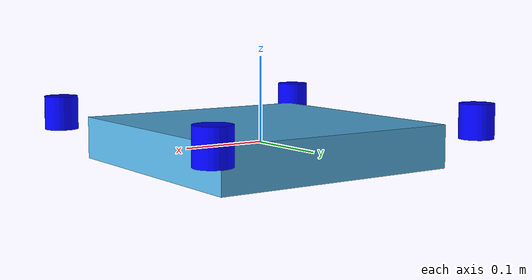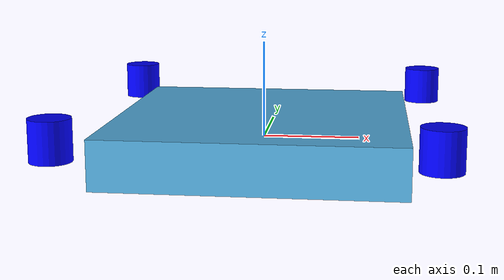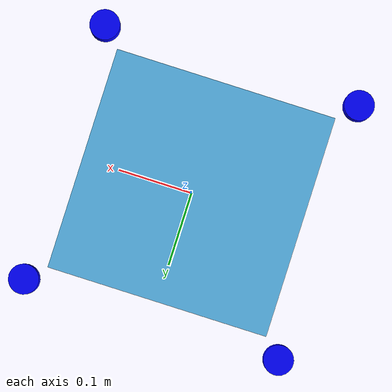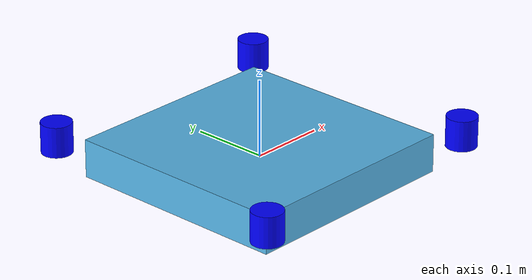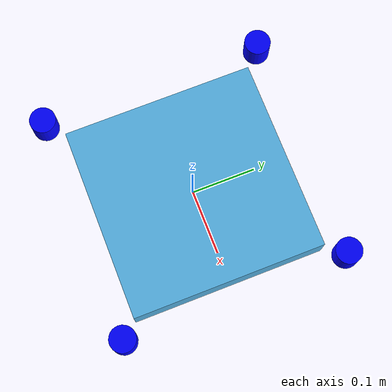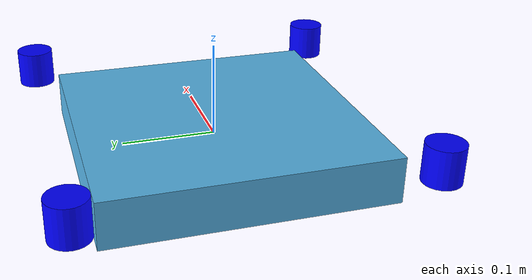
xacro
<?xml version="1.0"?>
<robot xmlns:xacro="http://www.ros.org/wiki/xacro" name="drone">

  <link name="base_link"/>

  <joint name="base_to_body" type="fixed">
    <parent link="base_link"/>
    <child link="body_link"/>
    <origin xyz="0 0 0" rpy="0 0 0"/>
  </joint>

  <link name="body_link">
    <visual>
      <geometry>
        <box size="0.3 0.3 0.05"/>
      </geometry>
    </visual>
  </link>

  <joint name="base_to_imu" type="fixed">
    <parent link="base_link"/>
    <child link="imu_link"/>
    <origin xyz="0 0 0" rpy="0 0 0"/>
  </joint>
  <link name="imu_link"/>

  <joint name="base_to_lidar" type="fixed">
    <parent link="base_link"/>
    <child link="lidar_link"/>
    <origin xyz="0.12 0.0 0.26" rpy="0 0 0"/>
  </joint>
  <link name="lidar_link"/>

  <material name="blue">
    <color rgba="0 0 1 1"/>
  </material>

  <joint name="motor_0_joint" type="fixed">
    <parent link="base_link"/>
    <child link="motor_0_link"/>
    <origin xyz="0.174 -0.174 0.03" rpy="0 0 0"/>
  </joint>
  <link name="motor_0_link">
    <visual>
      <geometry>
        <cylinder length="0.04" radius="0.02"/>
      </geometry>
      <material name="blue"/>
    </visual>
  </link>

  <joint name="motor_1_joint" type="fixed">
    <parent link="base_link"/>
    <child link="motor_1_link"/>
    <origin xyz="-0.174 0.174 0.03" rpy="0 0 0"/>
  </joint>
  <link name="motor_1_link">
    <visual>
      <geometry>
        <cylinder length="0.04" radius="0.02"/>
      </geometry>
      <material name="blue"/>
    </visual>
  </link>

  <joint name="motor_2_joint" type="fixed">
    <parent link="base_link"/>
    <child link="motor_2_link"/>
    <origin xyz="0.174 0.174 0.03" rpy="0 0 0"/>
  </joint>
  <link name="motor_2_link">
    <visual>
      <geometry>
        <cylinder length="0.04" radius="0.02"/>
      </geometry>
      <material name="blue"/>
    </visual>
  </link>

  <joint name="motor_3_joint" type="fixed">
    <parent link="base_link"/>
    <child link="motor_3_link"/>
    <origin xyz="-0.174 -0.174 0.03" rpy="0 0 0"/>
  </joint>
  <link name="motor_3_link">
    <visual>
      <geometry>
        <cylinder length="0.04" radius="0.02"/>
      </geometry>
      <material name="blue"/>
    </visual>
  </link>
<gazebo reference="lidar_link">
    <sensor name="lidar_2d_v2" type="gpu_lidar">
      <gz_frame_id>lidar_link</gz_frame_id>
      <lidar>
        <scan>
          <horizontal>
            <samples>720</samples>
            <resolution>1</resolution>
            <min_angle>-3.141592</min_angle>
            <max_angle>3.141592</max_angle>
          </horizontal>
        </scan>
        <range>
          <min>0.1</min>
          <max>30.0</max>
        </range>
      </lidar>
      <always_on>1</always_on>
      <visualize>true</visualize>
      <update_rate>10</update_rate>
    </sensor>
  </gazebo>
</robot>
